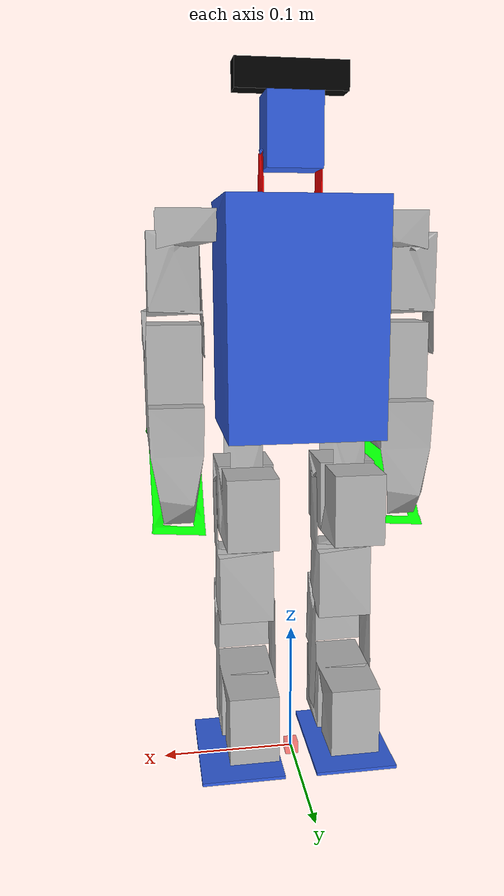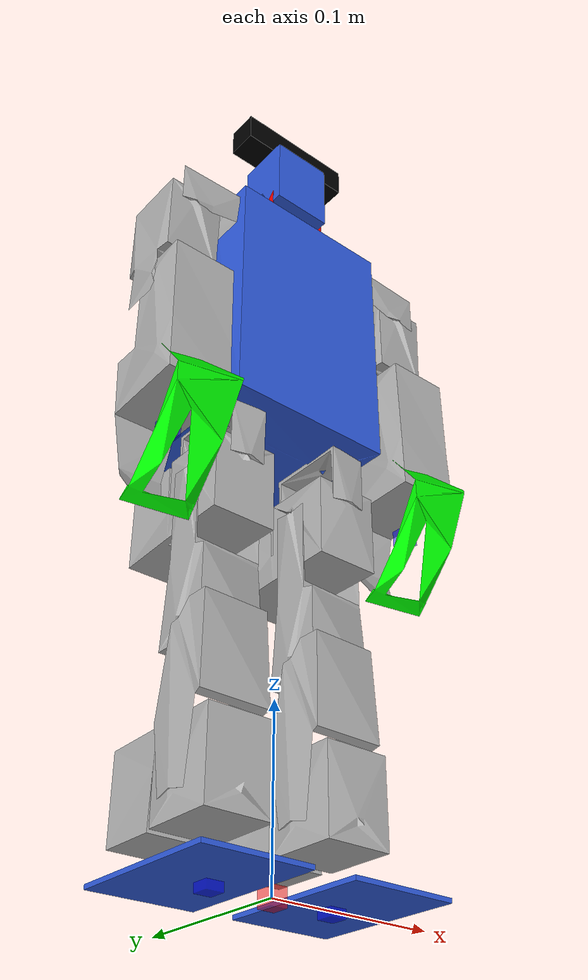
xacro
<?xml version="1.0" ?>
<robot name="darput" xmlns:xacro="http://www.ros.org/wiki/xacro">

<xacro:include filename="$(find darput_description)/urdf/materials.xacro" />
<xacro:include filename="$(find darput_description)/urdf/darput.trans" />
<xacro:include filename="$(find darput_description)/urdf/darput.gazebo" />

<link name="base_link">
  <inertial>
    <origin xyz="0 0 0" rpy="0 0 0"/>
    <mass value="0.001"/>
    <inertia ixx="1e-06" ixy="0" ixz="0" iyy="1e-06" iyz="0" izz="1e-06"/>
  </inertial>
  <visual>
    <geometry>
       <box size="0.01 0.01 0.01"/>
    </geometry>
    <!-- Tag color harus MASUK ke dalam tag material -->
    <material name="red_transparent">
        <color rgba="1 0 0 0.5"/>
    </material>
  </visual>
</link>

<link name="base_center">
  <inertial>
    <origin xyz="0.10713591161425433 0.0683334443476024 0.3420264501037035" rpy="0 0 0"/>
    <mass value="0.6347105506232803"/>
    <inertia ixx="0.0019" iyy="0.001956" izz="0.001156" ixy="0.0" iyz="0.0" ixz="-0.0"/>
  </inertial>
  <visual>
    <origin xyz="0 0 0" rpy="0 0 0"/>
    <geometry>
      <mesh filename="file://$(find darput_description)/meshes/base_link.stl" scale="0.001 0.001 0.001"/>
    </geometry>
    <material name="blue"/>
  </visual>
  <collision>
    <origin xyz="0 0 0" rpy="0 0 0"/>
    <geometry>
      <mesh filename="file://$(find darput_description)/meshes/base_link.stl" scale="0.001 0.001 0.001"/>
    </geometry>
  </collision>
</link>

<link name="Konektor_Lengan_v3_1">
  <inertial>
    <origin xyz="0.013301079694455792 -1.157954630168212e-07 -0.0009342319832492674" rpy="0 0 0"/>
    <mass value="0.013242146871248835"/>
    <inertia ixx="5e-06" iyy="3e-06" izz="7e-06" ixy="-0.0" iyz="-0.0" ixz="0.0"/>
  </inertial>
  <visual>
    <origin xyz="-0.163136 -0.044836 -0.4041" rpy="0 0 0"/>
    <geometry>
      <mesh filename="file://$(find darput_description)/meshes/Konektor_Lengan_v3_1.stl" scale="0.001 0.001 0.001"/>
    </geometry>
    <material name="silver"/>
  </visual>
  <collision>
    <origin xyz="-0.163136 -0.044836 -0.4041" rpy="0 0 0"/>
    <geometry>
      <mesh filename="file://$(find darput_description)/meshes/Konektor_Lengan_v3_1.stl" scale="0.001 0.001 0.001"/>
    </geometry>
  </collision>
</link>

<link name="Lengan_v2_1">
  <inertial>
    <origin xyz="-8.838574647174191e-08 0.02241768128190586 -0.01790269406119893" rpy="0 0 0"/>
    <mass value="0.09036794389888728"/>
    <inertia ixx="4.2e-05" iyy="4.2e-05" izz="2.3e-05" ixy="-0.0" iyz="-0.0" ixz="0.0"/>
  </inertial>
  <visual>
    <origin xyz="-0.191536 -0.022336 -0.3881" rpy="0 0 0"/>
    <geometry>
      <mesh filename="file://$(find darput_description)/meshes/Lengan_v2_1.stl" scale="0.001 0.001 0.001"/>
    </geometry>
    <material name="silver"/>
  </visual>
  <collision>
    <origin xyz="-0.191536 -0.022336 -0.3881" rpy="0 0 0"/>
    <geometry>
      <mesh filename="file://$(find darput_description)/meshes/Lengan_v2_1.stl" scale="0.001 0.001 0.001"/>
    </geometry>
  </collision>
</link>

<link name="Tangan_v2_1">
  <inertial>
    <origin xyz="-0.02240008838574653 0.004037508735633827 -0.04018756249798844" rpy="0 0 0"/>
    <mass value="0.18709544013838483"/>
    <inertia ixx="0.000184" iyy="0.000172" izz="6.2e-05" ixy="0.0" iyz="2.1e-05" ixz="0.0"/>
  </inertial>
  <visual>
    <origin xyz="-0.214036 -0.028836 -0.32355" rpy="0 0 0"/>
    <geometry>
      <mesh filename="file://$(find darput_description)/meshes/Tangan_v2_1.stl" scale="0.001 0.001 0.001"/>
    </geometry>
    <material name="silver"/>
  </visual>
</link>

<link name="Capit_v2__1__1">
  <inertial>
    <origin xyz="-0.022495776965903047 -0.009915774061383472 -0.02380897438456503" rpy="0 0 0"/>
    <mass value="0.02281624421253465"/>
    <inertia ixx="2.3e-05" iyy="2.5e-05" izz="9e-06" ixy="-0.0" iyz="6e-06" ixz="0.0"/>
  </inertial>
  <visual>
    <origin xyz="-0.214036 -0.020836 -0.26075" rpy="0 0 0"/>
    <geometry>
      <mesh filename="file://$(find darput_description)/meshes/Capit_v2__1__1.stl" scale="0.001 0.001 0.001"/>
    </geometry>
    <material name="green"/>
  </visual>
</link>

<link name="Konektor_Lengan_v3__1__1">
  <inertial>
    <origin xyz="-0.013301256465947167 -1.1579546348172709e-07 -0.0009342319832491564" rpy="0 0 0"/>
    <mass value="0.013242146871248835"/>
    <inertia ixx="5e-06" iyy="3e-06" izz="7e-06" ixy="0.0" iyz="0.0" ixz="-0.0"/>
  </inertial>
  <visual>
    <origin xyz="-0.051136 -0.044836 -0.4041" rpy="0 0 0"/>
    <geometry>
      <mesh filename="file://$(find darput_description)/meshes/Konektor_Lengan_v3__1__1.stl" scale="0.001 0.001 0.001"/>
    </geometry>
    <material name="silver"/>
  </visual>
  <collision>
    <origin xyz="-0.051136 -0.044836 -0.4041" rpy="0 0 0"/>
    <geometry>
      <mesh filename="file://$(find darput_description)/meshes/Konektor_Lengan_v3__1__1.stl" scale="0.001 0.001 0.001"/>
    </geometry>
  </collision>
</link>

<link name="Lengan_v2__1__1">
  <inertial>
    <origin xyz="-8.83857448896741e-08 0.022417681281905244 -0.017902694061199043" rpy="0 0 0"/>
    <mass value="0.09036794389888728"/>
    <inertia ixx="4.2e-05" iyy="4.2e-05" izz="2.3e-05" ixy="-0.0" iyz="-0.0" ixz="0.0"/>
  </inertial>
  <visual>
    <origin xyz="-0.022736 -0.022336 -0.3881" rpy="0 0 0"/>
    <geometry>
      <mesh filename="file://$(find darput_description)/meshes/Lengan_v2__1__1.stl" scale="0.001 0.001 0.001"/>
    </geometry>
    <material name="silver"/>
  </visual>
  <collision>
    <origin xyz="-0.022736 -0.022336 -0.3881" rpy="0 0 0"/>
    <geometry>
      <mesh filename="file://$(find darput_description)/meshes/Lengan_v2__1__1.stl" scale="0.001 0.001 0.001"/>
    </geometry>
  </collision>
</link>

<link name="Tangan_v2__1__1">
  <inertial>
    <origin xyz="0.022399911614254978 0.004037508735633175 -0.040187562497988216" rpy="0 0 0"/>
    <mass value="0.18709544013838483"/>
    <inertia ixx="0.000184" iyy="0.000172" izz="6.2e-05" ixy="0.0" iyz="2.1e-05" ixz="-0.0"/>
  </inertial>
  <visual>
    <origin xyz="-0.000236 -0.028836 -0.32355" rpy="0 0 0"/>
    <geometry>
      <mesh filename="file://$(find darput_description)/meshes/Tangan_v2__1__1.stl" scale="0.001 0.001 0.001"/>
    </geometry>
    <material name="silver"/>
  </visual>
</link>

<link name="Capit_v2_1">
  <inertial>
    <origin xyz="0.022504223034098027 -0.009915774061383852 -0.023808974384565057" rpy="0 0 0"/>
    <mass value="0.02281624421253465"/>
    <inertia ixx="2.3e-05" iyy="2.5e-05" izz="9e-06" ixy="-0.0" iyz="6e-06" ixz="0.0"/>
  </inertial>
  <visual>
    <origin xyz="-0.000236 -0.020836 -0.26075" rpy="0 0 0"/>
    <geometry>
      <mesh filename="file://$(find darput_description)/meshes/Capit_v2_1.stl" scale="0.001 0.001 0.001"/>
    </geometry>
    <material name="green"/>
  </visual>
</link>

<link name="Konektor_Paha_v2_1">
  <inertial>
    <origin xyz="-8.838574565295243e-08 0.0027667016018834423 -0.009072645621017839" rpy="0 0 0"/>
    <mass value="0.014335139284799478"/>
    <inertia ixx="8e-06" iyy="3e-06" izz="7e-06" ixy="0.0" iyz="-0.0" ixz="-0.0"/>
  </inertial>
  <visual>
    <origin xyz="-0.070136 -0.051336 -0.25965" rpy="0 0 0"/>
    <geometry>
      <mesh filename="file://$(find darput_description)/meshes/Konektor_Paha_v2_1.stl" scale="0.001 0.001 0.001"/>
    </geometry>
    <material name="silver"/>
  </visual>
  <collision>
    <origin xyz="-0.070136 -0.051336 -0.25965" rpy="0 0 0"/>
    <geometry>
      <mesh filename="file://$(find darput_description)/meshes/Konektor_Paha_v2_1.stl" scale="0.001 0.001 0.001"/>
    </geometry>
  </collision>
</link>

<link name="Paha_v6_1">
  <inertial>
    <origin xyz="-8.838574687419776e-08 -0.005642799790289199 -0.013337752113080414" rpy="0 0 0"/>
    <mass value="0.16503913633833509"/>
    <inertia ixx="0.000138" iyy="5.5e-05" izz="0.000123" ixy="0.0" iyz="0.0" ixz="-0.0"/>
  </inertial>
  <visual>
    <origin xyz="-0.070136 -0.077336 -0.2256" rpy="0 0 0"/>
    <geometry>
      <mesh filename="file://$(find darput_description)/meshes/Paha_v6_1.stl" scale="0.001 0.001 0.001"/>
    </geometry>
    <material name="silver"/>
  </visual>
  <collision>
    <origin xyz="-0.070136 -0.077336 -0.2256" rpy="0 0 0"/>
    <geometry>
      <mesh filename="file://$(find darput_description)/meshes/Paha_v6_1.stl" scale="0.001 0.001 0.001"/>
    </geometry>
  </collision>
</link>

<link name="Lutut_v2_1">
  <inertial>
    <origin xyz="0.02249991161425144 -1.1579546139312002e-07 -0.07636680828566153" rpy="0 0 0"/>
    <mass value="0.10019768041144636"/>
    <inertia ixx="5.4e-05" iyy="6e-05" izz="2.5e-05" ixy="0.0" iyz="-0.0" ixz="-0.0"/>
  </inertial>
  <visual>
    <origin xyz="-0.047736 -0.056836 -0.2256" rpy="0 0 0"/>
    <geometry>
      <mesh filename="file://$(find darput_description)/meshes/Lutut_v2_1.stl" scale="0.001 0.001 0.001"/>
    </geometry>
    <material name="silver"/>
  </visual>
  <collision>
    <origin xyz="-0.047736 -0.056836 -0.2256" rpy="0 0 0"/>
    <geometry>
      <mesh filename="file://$(find darput_description)/meshes/Lutut_v2_1.stl" scale="0.001 0.001 0.001"/>
    </geometry>
  </collision>
</link>

<link name="Betis_v2__1__1">
  <inertial>
    <origin xyz="0.022499911614249864 -0.008202839815640878 -0.03634479273317805" rpy="0 0 0"/>
    <mass value="0.03319461293469308"/>
    <inertia ixx="2.7e-05" iyy="3.6e-05" izz="1.7e-05" ixy="0.0" iyz="4e-06" ixz="-0.0"/>
  </inertial>
  <visual>
    <origin xyz="-0.047836 -0.056836 -0.1301" rpy="0 0 0"/>
    <geometry>
      <mesh filename="file://$(find darput_description)/meshes/Betis_v2__1__1.stl" scale="0.001 0.001 0.001"/>
    </geometry>
    <material name="silver"/>
  </visual>
  <collision>
    <origin xyz="-0.047836 -0.056836 -0.1301" rpy="0 0 0"/>
    <geometry>
      <mesh filename="file://$(find darput_description)/meshes/Betis_v2__1__1.stl" scale="0.001 0.001 0.001"/>
    </geometry>
  </collision>
</link>

<link name="Mata_Kaki_v2__1__1">
  <inertial>
    <origin xyz="0.022399911614249264 0.014857427032682169 0.013338327265798942" rpy="0 0 0"/>
    <mass value="0.1651150849038537"/>
    <inertia ixx="0.000138" iyy="5.5e-05" izz="0.000123" ixy="-0.0" iyz="-0.0" ixz="-0.0"/>
  </inertial>
  <visual>
    <origin xyz="-0.047836 -0.054296 -0.038416" rpy="0 0 0"/>
    <geometry>
      <mesh filename="file://$(find darput_description)/meshes/Mata_Kaki_v2__1__1.stl" scale="0.001 0.001 0.001"/>
    </geometry>
    <material name="silver"/>
  </visual>
  <collision>
    <origin xyz="-0.047836 -0.054296 -0.038416" rpy="0 0 0"/>
    <geometry>
      <mesh filename="file://$(find darput_description)/meshes/Mata_Kaki_v2__1__1.stl" scale="0.001 0.001 0.001"/>
    </geometry>
  </collision>
</link>

<link name="Kaki_Kanan_v2_1">
  <inertial>
    <origin xyz="-0.006070235069133734 -0.023961077597018023 -0.031909235491611954" rpy="0 0 0"/>
    <mass value="0.03856063490043193"/>
    <inertia ixx="2.9e-05" iyy="1.2e-05" izz="3.4e-05" ixy="-0.0" iyz="0.0" ixz="-1e-06"/>
  </inertial>
  <visual>
    <origin xyz="-0.00607 -0.02396 -0.036416" rpy="0 0 0"/>
      <geometry>
        <box size="0.062 0.092 0.0025"/>
      </geometry>
    <material name="blue"/>
  </visual>
  <collision name="Kaki_Kanan_v2_1">
    <origin xyz="-0.00607 -0.02396 -0.036416" rpy="0 0 0"/>
      <geometry>
        <box size="0.062 0.092 0.0025"/>
      </geometry>
  </collision>
</link>

<link name="Konektor_Paha_v2__1__1">
  <inertial>
    <origin xyz="-8.838574561131907e-08 0.0027667016018837753 -0.009072645621017561" rpy="0 0 0"/>
    <mass value="0.014335139284799478"/>
    <inertia ixx="8e-06" iyy="3e-06" izz="7e-06" ixy="0.0" iyz="-0.0" ixz="0.0"/>
  </inertial>
  <visual>
    <origin xyz="-0.144136 -0.051336 -0.25965" rpy="0 0 0"/>
    <geometry>
      <mesh filename="file://$(find darput_description)/meshes/Konektor_Paha_v2__1__1.stl" scale="0.001 0.001 0.001"/>
    </geometry>
    <material name="silver"/>
  </visual>
  <collision>
    <origin xyz="-0.144136 -0.051336 -0.25965" rpy="0 0 0"/>
    <geometry>
      <mesh filename="file://$(find darput_description)/meshes/Konektor_Paha_v2__1__1.stl" scale="0.001 0.001 0.001"/>
    </geometry>
  </collision>
</link>

<link name="Paha_v6__1__1">
  <inertial>
    <origin xyz="-8.83857458056081e-08 -0.005642799790288866 -0.013337752113080387" rpy="0 0 0"/>
    <mass value="0.16503913633833509"/>
    <inertia ixx="0.000138" iyy="5.5e-05" izz="0.000123" ixy="0.0" iyz="0.0" ixz="0.0"/>
  </inertial>
  <visual>
    <origin xyz="-0.144136 -0.077336 -0.2256" rpy="0 0 0"/>
    <geometry>
      <mesh filename="file://$(find darput_description)/meshes/Paha_v6__1__1.stl" scale="0.001 0.001 0.001"/>
    </geometry>
    <material name="silver"/>
  </visual>
  <collision>
    <origin xyz="-0.144136 -0.077336 -0.2256" rpy="0 0 0"/>
    <geometry>
      <mesh filename="file://$(find darput_description)/meshes/Paha_v6__1__1.stl" scale="0.001 0.001 0.001"/>
    </geometry>
  </collision>
</link>

<link name="Lutut_v2__1__1">
  <inertial>
    <origin xyz="-0.022500088385745742 -1.157954610739309e-07 -0.07636680828566136" rpy="0 0 0"/>
    <mass value="0.10019768041144636"/>
    <inertia ixx="5.4e-05" iyy="6e-05" izz="2.5e-05" ixy="0.0" iyz="-0.0" ixz="0.0"/>
  </inertial>
  <visual>
    <origin xyz="-0.166536 -0.056836 -0.2256" rpy="0 0 0"/>
    <geometry>
      <mesh filename="file://$(find darput_description)/meshes/Lutut_v2__1__1.stl" scale="0.001 0.001 0.001"/>
    </geometry>
    <material name="silver"/>
  </visual>
  <collision>
    <origin xyz="-0.166536 -0.056836 -0.2256" rpy="0 0 0"/>
    <geometry>
      <mesh filename="file://$(find darput_description)/meshes/Lutut_v2__1__1.stl" scale="0.001 0.001 0.001"/>
    </geometry>
  </collision>
</link>

<link name="Betis_v2_1">
  <inertial>
    <origin xyz="-0.022500088385745992 -0.008202839815640545 -0.036344792733177755" rpy="0 0 0"/>
    <mass value="0.03319461293469308"/>
    <inertia ixx="2.7e-05" iyy="3.6e-05" izz="1.7e-05" ixy="0.0" iyz="4e-06" ixz="-0.0"/>
  </inertial>
  <visual>
    <origin xyz="-0.166436 -0.056836 -0.1301" rpy="0 0 0"/>
    <geometry>
      <mesh filename="file://$(find darput_description)/meshes/Betis_v2_1.stl" scale="0.001 0.001 0.001"/>
    </geometry>
    <material name="silver"/>
  </visual>
  <collision>
    <origin xyz="-0.166436 -0.056836 -0.1301" rpy="0 0 0"/>
    <geometry>
      <mesh filename="file://$(find darput_description)/meshes/Betis_v2_1.stl" scale="0.001 0.001 0.001"/>
    </geometry>
  </collision>
</link>

<link name="Mata_Kaki_v2_1">
  <inertial>
    <origin xyz="-0.022400088385745837 0.014857427032683085 0.013338327265799386" rpy="0 0 0"/>
    <mass value="0.1651150849038537"/>
    <inertia ixx="0.000138" iyy="5.5e-05" izz="0.000123" ixy="-0.0" iyz="-0.0" ixz="0.0"/>
  </inertial>
  <visual>
    <origin xyz="-0.166436 -0.054296 -0.038416" rpy="0 0 0"/>
    <geometry>
      <mesh filename="file://$(find darput_description)/meshes/Mata_Kaki_v2_1.stl" scale="0.001 0.001 0.001"/>
    </geometry>
    <material name="silver"/>
  </visual>
  <collision>
    <origin xyz="-0.166436 -0.054296 -0.038416" rpy="0 0 0"/>
    <geometry>
      <mesh filename="file://$(find darput_description)/meshes/Mata_Kaki_v2_1.stl" scale="0.001 0.001 0.001"/>
    </geometry>
  </collision>
</link>

<link name="Kaki_Kiri_v3_1">
  <inertial>
    <origin xyz="0.006070058297635128 -0.023961077597017322 -0.03190923549161178" rpy="0 0 0"/>
    <mass value="0.03856063490043197"/>
    <inertia ixx="2.9e-05" iyy="1.2e-05" izz="3.4e-05" ixy="0.0" iyz="0.0" ixz="1e-06"/>
  </inertial>
  <visual>
    <origin xyz="0.00607 -0.02396 -0.036416" rpy="0 0 0"/>
  <geometry>
    <box size="0.062 0.092 0.0025"/>
  </geometry>
    <material name="blue"/>
  </visual>
  <collision name="Kaki_Kiri_v3_1">
    <origin xyz="0.00607 -0.02396 -0.036416" rpy="0 0 0"/>
    <geometry>
      <box size="0.062 0.092 0.0025"/>
    </geometry>
  </collision>
</link>

<link name="Konektor_Kepala_v5_1">
  <inertial>
    <origin xyz="-8.83857411287936e-08 -1.1579546355111603e-07 0.006096903708881718" rpy="0 0 0"/>
    <mass value="0.012358301986381577"/>
    <inertia ixx="2e-06" iyy="5e-06" izz="4e-06" ixy="0.0" iyz="0.0" ixz="0.0"/>
  </inertial>
  <visual>
    <origin xyz="-0.107136 -0.042336 -0.4244" rpy="0 0 0"/>
    <geometry>
      <mesh filename="file://$(find darput_description)/meshes/Konektor_Kepala_v5_1.stl" scale="0.001 0.001 0.001"/>
    </geometry>
    <material name="red"/>
  </visual>
  <collision>
    <origin xyz="-0.107136 -0.042336 -0.4244" rpy="0 0 0"/>
    <geometry>
      <mesh filename="file://$(find darput_description)/meshes/Konektor_Kepala_v5_1.stl" scale="0.001 0.001 0.001"/>
    </geometry>
  </collision>
</link>

<link name="Kepala_v2_1">
  <inertial>
    <origin xyz="-0.02240008838574571 -1.1579546380091621e-07 0.013285733304838454" rpy="0 0 0"/>
    <mass value="0.22680473262237913"/>
    <inertia ixx="7.2e-05" iyy="7.8e-05" izz="5.4e-05" ixy="0.0" iyz="-0.0" ixz="0.0"/>
  </inertial>
  <visual>
    <origin xyz="-0.128636 -0.042336 -0.4544" rpy="0 0 0"/>
    <geometry>
      <mesh filename="file://$(find darput_description)/meshes/Kepala_v2_1.stl" scale="0.001 0.001 0.001"/>
    </geometry>
    <material name="blue"/>
  </visual>
  <collision>
    <origin xyz="-0.128636 -0.042336 -0.4544" rpy="0 0 0"/>
    <geometry>
      <mesh filename="file://$(find darput_description)/meshes/Kepala_v2_1.stl" scale="0.001 0.001 0.001"/>
    </geometry>
  </collision>
</link>

<!-- Bagian JOINT -->

<joint name="center_to_base" type="fixed">
  <parent link="base_link"/>
  <child link="base_center"/>
  <origin xyz="-0.107136 -0.050 0.0" rpy="0 0 0"/>
</joint>

<joint name="imu_joint" type="fixed">
  <parent link="base_center"/>
  <child link="imu_link"/>
  <origin xyz="0.1 0.06 0.34" rpy="0 0 0"/>
</joint>

<link name="imu_link">
  <visual>
    <geometry>
      <box size="0.01 0.01 0.01"/>
    </geometry>
    <material name="black">
      <color rgba="0 0 0 1"/>
    </material>
  </visual>
  <inertial>
    <mass value="0.01"/>
    <inertia ixx="0.0001" ixy="0" ixz="0" iyy="0.0001" iyz="0" izz="0.0001"/>
  </inertial>
</link>

<joint name="camera_joint" type="fixed">
  <parent link="Kepala_v2_1"/>
  <child link="camera_link"/>
  <origin xyz="-0.0215 0 0.05" rpy="0 0 1.5707"/>
</joint>

<link name="camera_link">
  <visual>
    <geometry>
      <box size="0.02 0.08 0.02"/>
    </geometry>
    <material name="black">
      <color rgba="0 0 0 1"/>
    </material>
  </visual>
  <inertial>
    <mass value="0.01"/>
    <inertia ixx="0.0001" ixy="0" ixz="0" iyy="0.0001" iyz="0" izz="0.0001"/>
  </inertial>
</link>

<joint name="camera_optical_joint" type="fixed">
  <parent link="camera_link"/>
  <child link="camera_link_optical"/>
  <origin xyz="0 0 0" rpy="-1.5707 0 -1.5707"/>
</joint>

<link name="camera_link_optical"></link>

<link name="End_Effector_Tangan_Kanan_1">
  <inertial><origin xyz="0 0 0" rpy="0 0 0"/><mass value="0.001"/> <inertia ixx="0.0001" iyy="0.0001" izz="0.0001" ixy="0" iyz="0" ixz="0"/></inertial>
  <visual><origin xyz="0 0 0" rpy="0 0 0"/><geometry><box size="0.01 0.01 0.01"/> </geometry><material name="blue2"><color rgba="0 0 1 0.5"/></material></visual>
</link>
<link name="End_Effector_Kaki_Kanan_1">
  <inertial><origin xyz="0 0 0" rpy="0 0 0"/><mass value="0.001"/> <inertia ixx="0.0001" iyy="0.0001" izz="0.0001" ixy="0" iyz="0" ixz="0"/></inertial>
  <visual><origin xyz="0 0 0" rpy="0 0 0"/><geometry><box size="0.01 0.01 0.01"/> </geometry><material name="blue2"><color rgba="0 0 1 0.5"/></material></visual>
</link>
<link name="End_Effector_Kaki_Kiri_1">
  <inertial><origin xyz="0 0 0" rpy="0 0 0"/><mass value="0.001"/> <inertia ixx="0.0001" iyy="0.0001" izz="0.0001" ixy="0" iyz="0" ixz="0"/></inertial>
  <visual><origin xyz="0 0 0" rpy="0 0 0"/><geometry><box size="0.01 0.01 0.01"/> </geometry><material name="blue2"><color rgba="0 0 1 0.5"/></material></visual>
</link>
<link name="End_Effector_Tangan_Kiri_1">
  <inertial><origin xyz="0 0 0" rpy="0 0 0"/><mass value="0.001"/> <inertia ixx="0.0001" iyy="0.0001" izz="0.0001" ixy="0" iyz="0" ixz="0"/></inertial>
  <visual><origin xyz="0 0 0" rpy="0 0 0"/><geometry><box size="0.01 0.01 0.01"/> </geometry><material name="blue2"><color rgba="0 0 1 0.5"/></material></visual>
</link>

<joint name="joint_end_effector_kanan" type="fixed">
  <parent link="Tangan_v2__1__1"/>
  <child link="End_Effector_Tangan_Kanan_1"/>
  <origin xyz="0.02 0.005 -0.1" rpy="0 0 0"/>
</joint>
<joint name="joint_tapak_kaki_kanan" type="fixed">
  <parent link="Kaki_Kanan_v2_1"/>
  <child link="End_Effector_Kaki_Kanan_1"/>
  <origin xyz="0 -0.025 -0.0375" rpy="0 0 0"/>
</joint>
<joint name="joint_tapak_kaki_kiri" type="fixed">
  <parent link="Kaki_Kiri_v3_1"/>
  <child link="End_Effector_Kaki_Kiri_1"/>
  <origin xyz="0 -0.025 -0.0375" rpy="0 0 0"/>
</joint>
<joint name="joint_end_effector_kiri" type="fixed">
  <parent link="Tangan_v2_1"/>
  <child link="End_Effector_Tangan_Kiri_1"/>
  <origin xyz="-0.02 0.005 -0.1" rpy="0 0 0"/>
</joint>

<joint name="Lengan Kiri" type="revolute">
  <origin xyz="0.163136 0.044836 0.4041" rpy="0 0 0"/>
  <parent link="base_center"/>
  <child link="Konektor_Lengan_v3_1"/>
  <axis xyz="1.0 0.0 -0.0"/>
  <dynamics damping="0.5"/>
  <limit lower="-3.14159" upper="3.14159" effort="10" velocity="6"/>
</joint>

<joint name="Bahu Tangan Kiri" type="revolute">
  <origin xyz="0.0284 -0.0225 -0.016" rpy="0 0 0"/>
  <parent link="Konektor_Lengan_v3_1"/>
  <child link="Lengan_v2_1"/>
  <axis xyz="-0.0 1.0 0.0"/>
  <dynamics damping="0.5"/>
  <limit lower="-3.14159" upper="3.14159" effort="10" velocity="6"/>
</joint>

<joint name="Tangan Kiri" type="revolute">
  <origin xyz="0.0225 0.0065 -0.06455" rpy="0 0 0"/>
  <parent link="Lengan_v2_1"/>
  <child link="Tangan_v2_1"/>
  <axis xyz="-1.0 -0.0 0.0"/>
  <dynamics damping="0.5"/>
  <limit lower="-3.14159" upper="3.14159" effort="10" velocity="6"/>
</joint>

<joint name="Capit Kiri" type="revolute">
  <origin xyz="0.0 -0.008 -0.0628" rpy="0 0 0"/>
  <parent link="Tangan_v2_1"/>
  <child link="Capit_v2__1__1"/>
  <axis xyz="1.0 0.0 -0.0"/>
  <dynamics damping="0.5"/>
  <limit lower="-3.14159" upper="3.14159" effort="10" velocity="6"/>
</joint>

<joint name="Lengan Kanan" type="revolute">
  <origin xyz="0.051136 0.044836 0.4041" rpy="0 0 0"/>
  <parent link="base_center"/>
  <child link="Konektor_Lengan_v3__1__1"/>
  <axis xyz="-1.0 -0.0 0.0"/>
  <dynamics damping="0.5"/>
  <limit lower="-3.14159" upper="3.14159" effort="10" velocity="6"/>
</joint>

<joint name="Bahu Tangan Kanan" type="revolute">
  <origin xyz="-0.0284 -0.0225 -0.016" rpy="0 0 0"/>
  <parent link="Konektor_Lengan_v3__1__1"/>
  <child link="Lengan_v2__1__1"/>
  <axis xyz="-0.0 1.0 0.0"/>
  <dynamics damping="0.5"/>
  <limit lower="-3.14159" upper="3.14159" effort="10" velocity="6"/>
</joint>

<joint name="Tangan Kanan" type="revolute">
  <origin xyz="-0.0225 0.0065 -0.06455" rpy="0 0 0"/>
  <parent link="Lengan_v2__1__1"/>
  <child link="Tangan_v2__1__1"/>
  <axis xyz="1.0 0.0 -0.0"/>
  <dynamics damping="0.5"/>
  <limit lower="-3.14159" upper="3.14159" effort="10" velocity="6"/>
</joint>

<joint name="Capit Kanan" type="revolute">
  <origin xyz="0.0 -0.008 -0.0628" rpy="0 0 0"/>
  <parent link="Tangan_v2__1__1"/>
  <child link="Capit_v2_1"/>
  <axis xyz="-1.0 -0.0 0.0"/>
  <dynamics damping="0.5"/>
  <limit lower="-3.14159" upper="3.14159" effort="10" velocity="6"/>
</joint>

<joint name="Paha Kanan Putar" type="revolute">
  <origin xyz="0.070136 0.051336 0.25965" rpy="0 0 0"/>
  <parent link="base_center"/>
  <child link="Konektor_Paha_v2_1"/>
  <axis xyz="-0.0 0.0 -1.0"/>
  <dynamics damping="3.0"/>
  <limit lower="-3.14159" upper="3.14159" effort="40" velocity="6"/>
</joint>

<joint name="Paha Atas Kanan" type="revolute">
  <origin xyz="0.0 0.026 -0.03405" rpy="0 0 0"/>
  <parent link="Konektor_Paha_v2_1"/>
  <child link="Paha_v6_1"/>
  <axis xyz="-0.0 1.0 0.0"/>
  <dynamics damping="3.0"/>
  <limit lower="-3.14159" upper="3.14159" effort="40" velocity="6"/>
</joint>

<joint name="Paha Bawah Kanan" type="revolute">
  <origin xyz="-0.0224 -0.0205 0.0" rpy="0 0 0"/>
  <parent link="Paha_v6_1"/>
  <child link="Lutut_v2_1"/>
  <axis xyz="-1.0 -0.0 0.0"/>
  <dynamics damping="3.0"/>
  <limit lower="-3.14159" upper="3.14159" effort="40" velocity="6"/>
</joint>

<joint name="Lutut Kanan" type="revolute">
  <origin xyz="0.0001 0.0 -0.0955" rpy="0 0 0"/>
  <parent link="Lutut_v2_1"/>
  <child link="Betis_v2__1__1"/>
  <axis xyz="-1.0 -0.0 0.0"/>
  <dynamics damping="3.0"/>
  <limit lower="-3.14159" upper="3.14159" effort="40" velocity="6"/>
</joint>

<joint name="Kaki Kanan Atas" type="revolute">
  <origin xyz="0.0 -0.00254 -0.091684" rpy="0 0 0"/>
  <parent link="Betis_v2__1__1"/>
  <child link="Mata_Kaki_v2__1__1"/>
  <axis xyz="1.0 0.0 -0.0"/>
  <dynamics damping="3.0"/>
  <limit lower="-3.14159" upper="3.14159" effort="40" velocity="6"/>
</joint>

<joint name="Kaki Kanan Bawah" type="revolute">
  <origin xyz="0.0224 0.0205 0.0" rpy="0 0 0"/>
  <parent link="Mata_Kaki_v2__1__1"/>
  <child link="Kaki_Kanan_v2_1"/>
  <axis xyz="-0.0 -1.0 -0.0"/>
  <dynamics damping="3.0"/>
  <limit lower="-3.14159" upper="3.14159" effort="40" velocity="6"/>
</joint>

<joint name="Paha Kiri Putar" type="revolute">
  <origin xyz="0.144136 0.051336 0.25965" rpy="0 0 0"/>
  <parent link="base_center"/>
  <child link="Konektor_Paha_v2__1__1"/>
  <axis xyz="-0.0 0.0 -1.0"/>
  <dynamics damping="3.0"/>
  <limit lower="-3.14159" upper="3.14159" effort="40" velocity="6"/>
</joint>

<joint name="Paha Atas Kiri" type="revolute">
  <origin xyz="0.0 0.026 -0.03405" rpy="0 0 0"/>
  <parent link="Konektor_Paha_v2__1__1"/>
  <child link="Paha_v6__1__1"/>
  <axis xyz="-0.0 1.0 0.0"/>
  <dynamics damping="3.0"/>
  <limit lower="-3.14159" upper="3.14159" effort="40" velocity="6"/>
</joint>

<joint name="Paha Bawah Kiri" type="revolute">
  <origin xyz="0.0224 -0.0205 0.0" rpy="0 0 0"/>
  <parent link="Paha_v6__1__1"/>
  <child link="Lutut_v2__1__1"/>
  <axis xyz="1.0 0.0 -0.0"/>
  <dynamics damping="3.0"/>
  <limit lower="-3.14159" upper="3.14159" effort="40" velocity="6"/>
</joint>

<joint name="Lutut Kiri" type="revolute">
  <origin xyz="-0.0001 0.0 -0.0955" rpy="0 0 0"/>
  <parent link="Lutut_v2__1__1"/>
  <child link="Betis_v2_1"/>
  <axis xyz="1.0 0.0 -0.0"/>
  <dynamics damping="3.0"/>
  <limit lower="-3.14159" upper="3.14159" effort="40" velocity="6"/>
</joint>

<joint name="Kaki Kiri Atas" type="revolute">
  <origin xyz="0.0 -0.00254 -0.091684" rpy="0 0 0"/>
  <parent link="Betis_v2_1"/>
  <child link="Mata_Kaki_v2_1"/>
  <axis xyz="-1.0 -0.0 0.0"/>
  <dynamics damping="3.0"/>
  <limit lower="-3.14159" upper="3.14159" effort="40" velocity="6"/>
</joint>

<joint name="Kaki Kiri Bawah" type="revolute">
  <origin xyz="-0.0224 0.0205 0.0" rpy="0 0 0"/>
  <parent link="Mata_Kaki_v2_1"/>
  <child link="Kaki_Kiri_v3_1"/>
  <axis xyz="0.0 -1.0 -0.0"/>
  <dynamics damping="3.0"/>
  <limit lower="-3.14159" upper="3.14159" effort="40" velocity="6"/>
</joint>

<joint name="Leher Putar" type="revolute">
  <origin xyz="0.107136 0.042336 0.4244" rpy="0 0 0"/>
  <parent link="base_center"/>
  <child link="Konektor_Kepala_v5_1"/>
  <axis xyz="0.0 -0.0 1.0"/>
  <dynamics damping="0.5"/>
  <limit lower="-3.14159" upper="3.14159" effort="10" velocity="6"/>
</joint>

<joint name="Kepala Putar" type="revolute">
  <origin xyz="0.0215 0.0 0.03" rpy="0 0 0"/>
  <parent link="Konektor_Kepala_v5_1"/>
  <child link="Kepala_v2_1"/>
  <axis xyz="-1.0 -0.0 0.0"/>
  <dynamics damping="0.5"/>
  <limit lower="-3.14159" upper="3.14159" effort="10" velocity="6"/>
</joint>

<ros2_control name="IgnitionSystem" type="system">
  <hardware>
    <plugin>ign_ros2_control/IgnitionSystem</plugin>
  </hardware>

  <joint name="Lengan Kiri"><command_interface name="position"><param name="min">-3.14159</param><param name="max">3.14159</param></command_interface><state_interface name="position"><param name="initial_value">0</param></state_interface></joint>
  <joint name="Bahu Tangan Kiri"><command_interface name="position"><param name="min">-3.14159</param><param name="max">3.14159</param></command_interface><state_interface name="position"><param name="initial_value">0</param></state_interface></joint>
  <joint name="Tangan Kiri"><command_interface name="position"><param name="min">-3.14159</param><param name="max">3.14159</param></command_interface><state_interface name="position"><param name="initial_value">0</param></state_interface></joint>
  <joint name="Capit Kiri"><command_interface name="position"><param name="min">-3.14159</param><param name="max">3.14159</param></command_interface><state_interface name="position"><param name="initial_value">0</param></state_interface></joint>
  <joint name="Lengan Kanan"><command_interface name="position"><param name="min">-3.14159</param><param name="max">3.14159</param></command_interface><state_interface name="position"><param name="initial_value">0</param></state_interface></joint>
  <joint name="Bahu Tangan Kanan"><command_interface name="position"><param name="min">-3.14159</param><param name="max">3.14159</param></command_interface><state_interface name="position"><param name="initial_value">0</param></state_interface></joint>
  <joint name="Tangan Kanan"><command_interface name="position"><param name="min">-3.14159</param><param name="max">3.14159</param></command_interface><state_interface name="position"><param name="initial_value">0</param></state_interface></joint>
  <joint name="Capit Kanan"><command_interface name="position"><param name="min">-3.14159</param><param name="max">3.14159</param></command_interface><state_interface name="position"><param name="initial_value">0</param></state_interface></joint>
  <joint name="Paha Kanan Putar"><command_interface name="position"><param name="min">-3.14159</param><param name="max">3.14159</param></command_interface><state_interface name="position"><param name="initial_value">0</param></state_interface></joint>
  <joint name="Paha Atas Kanan"><command_interface name="position"><param name="min">-3.14159</param><param name="max">3.14159</param></command_interface><state_interface name="position"><param name="initial_value">0</param></state_interface></joint>
  <joint name="Paha Bawah Kanan"><command_interface name="position"><param name="min">-3.14159</param><param name="max">3.14159</param></command_interface><state_interface name="position"><param name="initial_value">0</param></state_interface></joint>
  <joint name="Lutut Kanan"><command_interface name="position"><param name="min">-3.14159</param><param name="max">3.14159</param></command_interface><state_interface name="position"><param name="initial_value">-0.2</param></state_interface></joint>
  <joint name="Kaki Kanan Atas"><command_interface name="position"><param name="min">-3.14159</param><param name="max">3.14159</param></command_interface><state_interface name="position"><param name="initial_value">-0.2</param></state_interface></joint>
  <joint name="Kaki Kanan Bawah"><command_interface name="position"><param name="min">-3.14159</param><param name="max">3.14159</param></command_interface><state_interface name="position"><param name="initial_value">0</param></state_interface></joint>
  <joint name="Paha Kiri Putar"><command_interface name="position"><param name="min">-3.14159</param><param name="max">3.14159</param></command_interface><state_interface name="position"><param name="initial_value">0</param></state_interface></joint>
  <joint name="Paha Atas Kiri"><command_interface name="position"><param name="min">-3.14159</param><param name="max">3.14159</param></command_interface><state_interface name="position"><param name="initial_value">0</param></state_interface></joint>
  <joint name="Paha Bawah Kiri"><command_interface name="position"><param name="min">-3.14159</param><param name="max">3.14159</param></command_interface><state_interface name="position"><param name="initial_value">0</param></state_interface></joint>
  <joint name="Lutut Kiri"><command_interface name="position"><param name="min">-3.14159</param><param name="max">3.14159</param></command_interface><state_interface name="position"><param name="initial_value">0.2</param></state_interface></joint>
  <joint name="Kaki Kiri Atas"><command_interface name="position"><param name="min">-3.14159</param><param name="max">3.14159</param></command_interface><state_interface name="position"><param name="initial_value">0.2</param></state_interface></joint>
  <joint name="Kaki Kiri Bawah"><command_interface name="position"><param name="min">-3.14159</param><param name="max">3.14159</param></command_interface><state_interface name="position"><param name="initial_value">0</param></state_interface></joint>
  <joint name="Leher Putar"><command_interface name="position"><param name="min">-3.14159</param><param name="max">3.14159</param></command_interface><state_interface name="position"><param name="initial_value">0</param></state_interface></joint>
  <joint name="Kepala Putar"><command_interface name="position"><param name="min">-3.14159</param><param name="max">3.14159</param></command_interface><state_interface name="position"><param name="initial_value">0</param></state_interface></joint>

  <sensor name="imu_sensor">
    <state_interface name="orientation.x"/>
    <state_interface name="orientation.y"/>
    <state_interface name="orientation.z"/>
    <state_interface name="orientation.w"/>
    <state_interface name="angular_velocity.x"/>
    <state_interface name="angular_velocity.y"/>
    <state_interface name="angular_velocity.z"/>
    <state_interface name="linear_acceleration.x"/>
    <state_interface name="linear_acceleration.y"/>
    <state_interface name="linear_acceleration.z"/>
  </sensor>
</ros2_control>

<gazebo>
  <plugin filename="gz_ros2_control-system" name="gz_ros2_control::GazeboSimROS2ControlPlugin">
    <parameters>$(find darput_description)/config/joint_controller.yaml</parameters>
  </plugin>
  <self_collide>1</self_collide>
</gazebo>

<gazebo reference="imu_link">
  <sensor name="imu_sensor" type="imu">
    <always_on>true</always_on>
    <update_rate>100</update_rate>
    <visualize>true</visualize>
    <plugin filename="libignition-gazebo-imu-system.so" name="ignition::gazebo::systems::Imu">
      <ros>
        <namespace>/</namespace>
        <remapping>~/out:=imu/data</remapping>
      </ros>
      <frame_name>imu_link</frame_name>
      <initial_orientation_as_reference>false</initial_orientation_as_reference>
    </plugin>
    <pose>0 0 0 0 0 0</pose>
  </sensor>
</gazebo>

<gazebo reference="camera_link">
  <sensor name="camera" type="camera">
    <update_rate>30.0</update_rate>
    <always_on>true</always_on>
    <visualize>true</visualize>
    <plugin filename="libignition-gazebo-sensors-system.so" name="ignition::gazebo::systems::Sensors">
      <render_engine>ogre2</render_engine>
    </plugin>
    <topic>camera/image_raw</topic>
    <camera name="head">
      <horizontal_fov>1.3962634</horizontal_fov>
      <image>
        <width>640</width>
        <height>360</height>
        <format>R8G8B8</format>
      </image>
      <clip>
        <near>0.02</near>
        <far>300</far>
      </clip>
    </camera>
  </sensor>
</gazebo>

<gazebo reference="Kaki_Kanan_v2_1">
  <sensor name="right_foot_contact" type="contact">
    <always_on>true</always_on>
    <update_rate>100</update_rate>
    <contact>
      <collision>Kaki_Kanan_v2_1_collision</collision>
      <topic>contact_right</topic>
    </contact>
  </sensor>
</gazebo>

<gazebo reference="Kaki_Kiri_v3_1">
  <sensor name="left_foot_contact" type="contact">
    <always_on>true</always_on>
    <update_rate>100</update_rate>
    <contact>
      <collision>Kaki_Kiri_v3_1_collision</collision>
      <topic>contact_left</topic>
    </contact>
  </sensor>
</gazebo>

</robot>

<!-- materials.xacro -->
<robot name="darput" xmlns:xacro="http://www.ros.org/wiki/xacro" >

<material name="silver">
  <color rgba="0.700 0.700 0.700 1.000"/>
</material>
<material name="blue">
  <color rgba="0.188 0.361 0.871 1.000"/>
</material>
<material name="red">
  <color rgba="1.000 0.000 0.000 1.000"/>
</material>
<material name="green">
  <color rgba="0.000 1.000 0.000 1.000"/>
</material>

</robot>

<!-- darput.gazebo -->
<robot name="darput" xmlns:xacro="http://www.ros.org/wiki/xacro" >

<xacro:property name="body_color" value="Gazebo/Silver" />

<gazebo>
  <plugin name="control" filename="libgazebo_ros_control.so"/>
</gazebo>
<gazebo reference="base_link">
  <material>${body_color}</material>
  <mu1>0.2</mu1>
  <mu2>0.2</mu2>
  <self_collide>true</self_collide>
  <gravity>true</gravity>
</gazebo>

<gazebo reference="Konektor_Lengan_v3_1">
  <material>${body_color}</material>
  <mu1>0.2</mu1>
  <mu2>0.2</mu2>
  <self_collide>true</self_collide>
</gazebo>

<gazebo reference="Lengan_v2_1">
  <material>${body_color}</material>
  <mu1>0.2</mu1>
  <mu2>0.2</mu2>
  <self_collide>true</self_collide>
</gazebo>

<gazebo reference="Tangan_v2_1">
  <material>${body_color}</material>
  <mu1>0.2</mu1>
  <mu2>0.2</mu2>
  <self_collide>true</self_collide>
</gazebo>

<gazebo reference="Capit_v2__1__1">
  <material>${body_color}</material>
  <mu1>0.2</mu1>
  <mu2>0.2</mu2>
  <self_collide>true</self_collide>
</gazebo>

<gazebo reference="Konektor_Lengan_v3__1__1">
  <material>${body_color}</material>
  <mu1>0.2</mu1>
  <mu2>0.2</mu2>
  <self_collide>true</self_collide>
</gazebo>

<gazebo reference="Lengan_v2__1__1">
  <material>${body_color}</material>
  <mu1>0.2</mu1>
  <mu2>0.2</mu2>
  <self_collide>true</self_collide>
</gazebo>

<gazebo reference="Tangan_v2__1__1">
  <material>${body_color}</material>
  <mu1>0.2</mu1>
  <mu2>0.2</mu2>
  <self_collide>true</self_collide>
</gazebo>

<gazebo reference="Capit_v2_1">
  <material>${body_color}</material>
  <mu1>0.2</mu1>
  <mu2>0.2</mu2>
  <self_collide>true</self_collide>
</gazebo>

<gazebo reference="Konektor_Paha_v2_1">
  <material>${body_color}</material>
  <mu1>0.2</mu1>
  <mu2>0.2</mu2>
  <self_collide>true</self_collide>
</gazebo>

<gazebo reference="Paha_v6_1">
  <material>${body_color}</material>
  <mu1>0.2</mu1>
  <mu2>0.2</mu2>
  <self_collide>true</self_collide>
</gazebo>

<gazebo reference="Lutut_v2_1">
  <material>${body_color}</material>
  <mu1>0.2</mu1>
  <mu2>0.2</mu2>
  <self_collide>true</self_collide>
</gazebo>

<gazebo reference="Betis_v2__1__1">
  <material>${body_color}</material>
  <mu1>0.2</mu1>
  <mu2>0.2</mu2>
  <self_collide>true</self_collide>
</gazebo>

<gazebo reference="Mata_Kaki_v2__1__1">
  <material>${body_color}</material>
  <mu1>0.2</mu1>
  <mu2>0.2</mu2>
  <self_collide>true</self_collide>
</gazebo>

<gazebo reference="Kaki_Kanan_v2_1">
  <material>${body_color}</material>
  <mu1>0.5</mu1>
  <mu2>0.5</mu2>
  <self_collide>true</self_collide>
</gazebo>

<gazebo reference="Konektor_Paha_v2__1__1">
  <material>${body_color}</material>
  <mu1>0.2</mu1>
  <mu2>0.2</mu2>
  <self_collide>true</self_collide>
</gazebo>

<gazebo reference="Paha_v6__1__1">
  <material>${body_color}</material>
  <mu1>0.2</mu1>
  <mu2>0.2</mu2>
  <self_collide>true</self_collide>
</gazebo>

<gazebo reference="Lutut_v2__1__1">
  <material>${body_color}</material>
  <mu1>0.2</mu1>
  <mu2>0.2</mu2>
  <self_collide>true</self_collide>
</gazebo>

<gazebo reference="Betis_v2_1">
  <material>${body_color}</material>
  <mu1>0.2</mu1>
  <mu2>0.2</mu2>
  <self_collide>true</self_collide>
</gazebo>

<gazebo reference="Mata_Kaki_v2_1">
  <material>${body_color}</material>
  <mu1>0.2</mu1>
  <mu2>0.2</mu2>
  <self_collide>true</self_collide>
</gazebo>

<gazebo reference="Kaki_Kiri_v3_1">
  <material>${body_color}</material>
  <mu1>0.5</mu1>
  <mu2>0.5</mu2>
  <self_collide>true</self_collide>
</gazebo>

<gazebo reference="Konektor_Kepala_v5_1">
  <material>${body_color}</material>
  <mu1>0.2</mu1>
  <mu2>0.2</mu2>
  <self_collide>true</self_collide>
</gazebo>

<gazebo reference="Kepala_v2_1">
  <material>${body_color}</material>
  <mu1>0.2</mu1>
  <mu2>0.2</mu2>
  <self_collide>true</self_collide>
</gazebo>

</robot>
